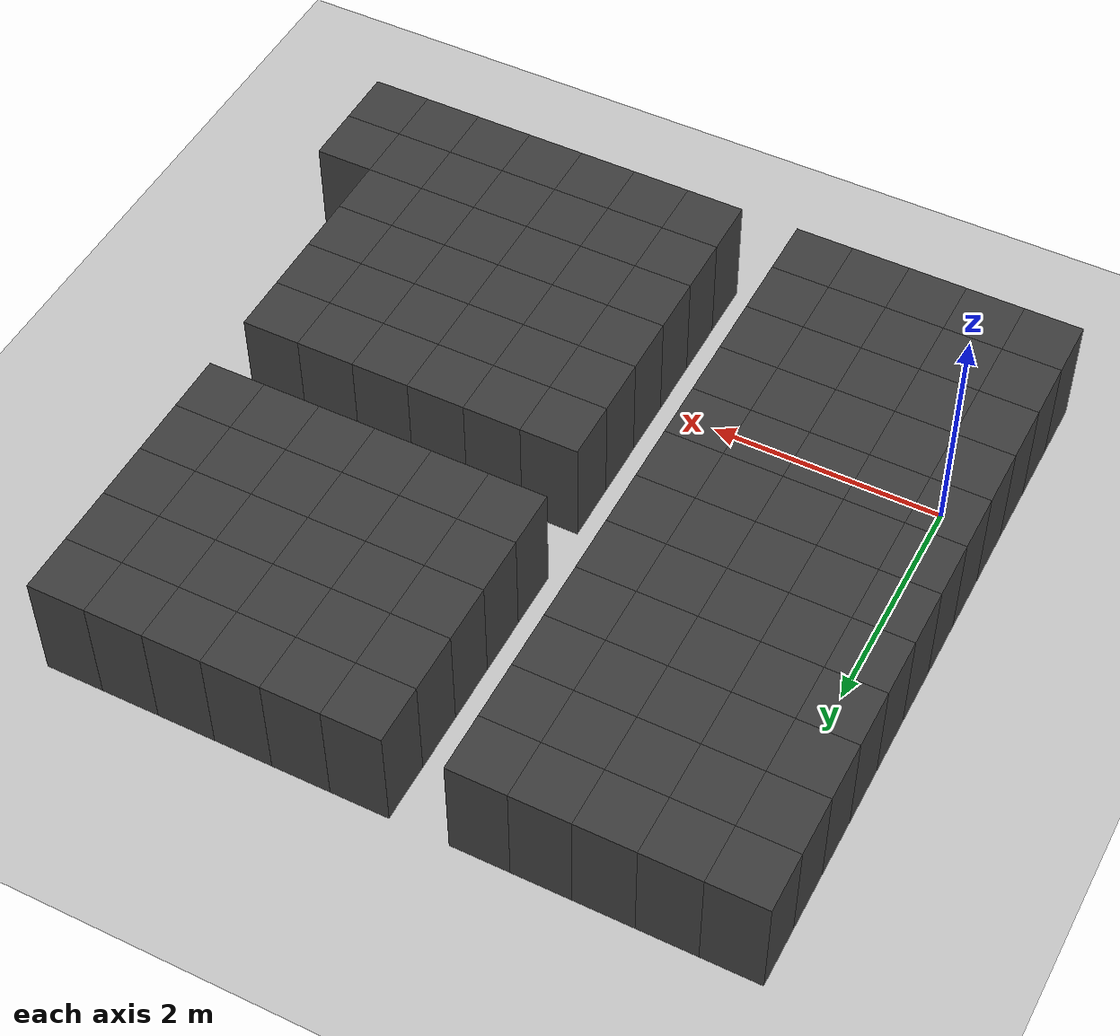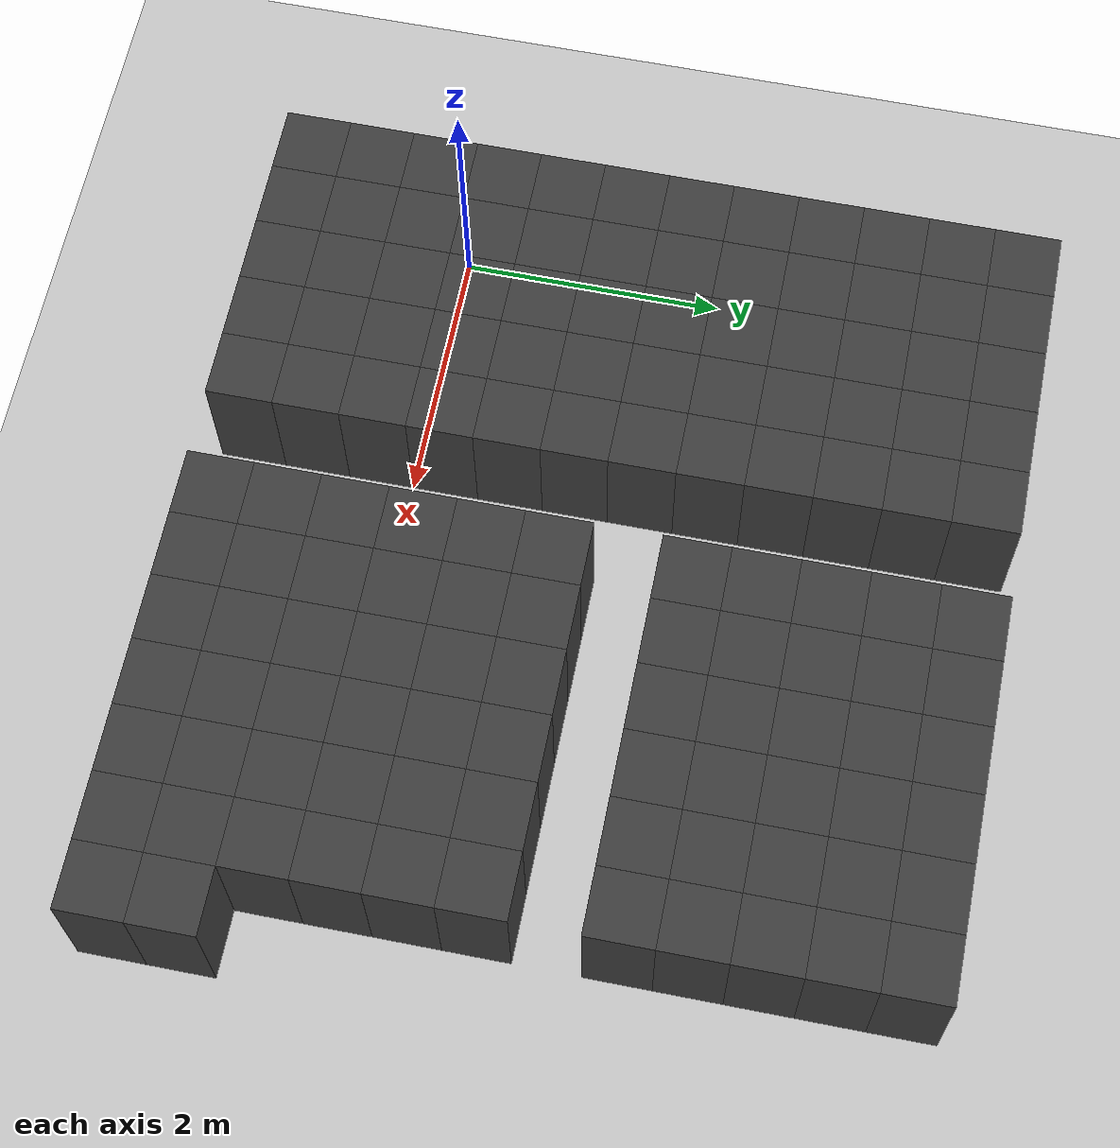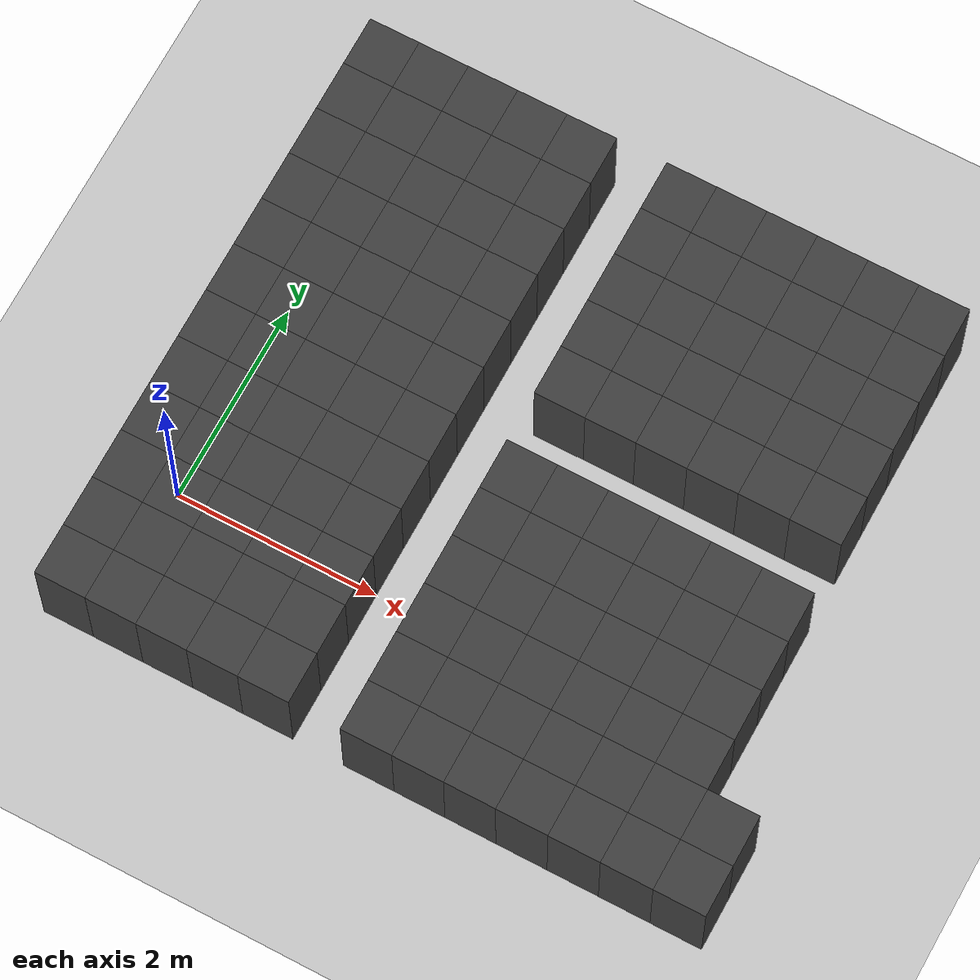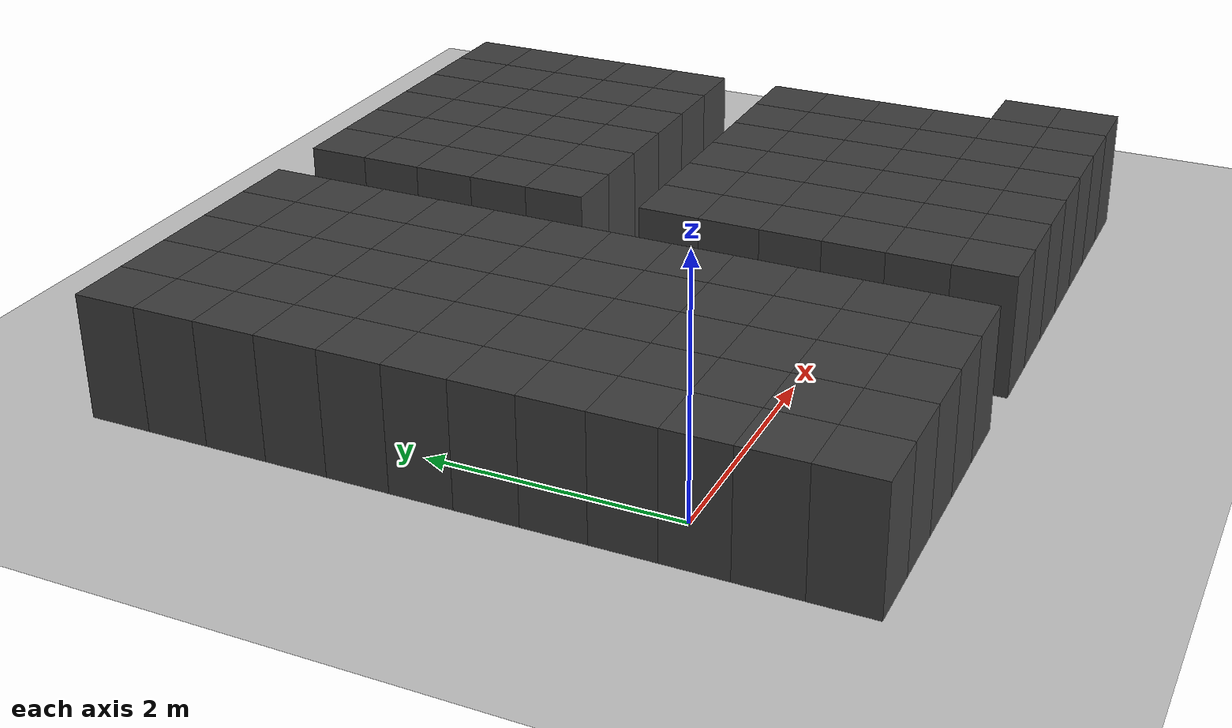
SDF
<sdf version="1.7">
 <world name="map_11672">
  <model name="ground_plane">
   <static>true</static>
   <link name="link">
    <collision name="collision">
     <geometry><plane><normal>0 0 1</normal><size>200 200</size></plane></geometry>
    </collision>
    <visual name="visual">
     <geometry><plane><normal>0 0 1</normal><size>200 200</size></plane></geometry>
     <material><ambient>0.8 0.8 0.8 1</ambient><diffuse>0.8 0.8 0.8 1</diffuse></material>
    </visual>
   </link>
  </model>
  <model name="maze_environment">
   <static>true</static>
   <link name="wall_639">
    <pose>-0.250 4.250 0.500 0 0 0</pose>
    <collision name="col"><geometry><box><size>0.5 0.5 1.0</size></box></geometry></collision>
    <visual name="vis">
     <geometry><box><size>0.5 0.5 1.0</size></box></geometry>
     <material><ambient>0.15 0.15 0.15 1</ambient><diffuse>0.25 0.25 0.25 1</diffuse></material>
    </visual>
   </link>
   <link name="wall_640">
    <pose>0.250 4.250 0.500 0 0 0</pose>
    <collision name="col"><geometry><box><size>0.5 0.5 1.0</size></box></geometry></collision>
    <visual name="vis">
     <geometry><box><size>0.5 0.5 1.0</size></box></geometry>
     <material><ambient>0.15 0.15 0.15 1</ambient><diffuse>0.25 0.25 0.25 1</diffuse></material>
    </visual>
   </link>
   <link name="wall_641">
    <pose>0.750 4.250 0.500 0 0 0</pose>
    <collision name="col"><geometry><box><size>0.5 0.5 1.0</size></box></geometry></collision>
    <visual name="vis">
     <geometry><box><size>0.5 0.5 1.0</size></box></geometry>
     <material><ambient>0.15 0.15 0.15 1</ambient><diffuse>0.25 0.25 0.25 1</diffuse></material>
    </visual>
   </link>
   <link name="wall_642">
    <pose>1.250 4.250 0.500 0 0 0</pose>
    <collision name="col"><geometry><box><size>0.5 0.5 1.0</size></box></geometry></collision>
    <visual name="vis">
     <geometry><box><size>0.5 0.5 1.0</size></box></geometry>
     <material><ambient>0.15 0.15 0.15 1</ambient><diffuse>0.25 0.25 0.25 1</diffuse></material>
    </visual>
   </link>
   <link name="wall_643">
    <pose>1.750 4.250 0.500 0 0 0</pose>
    <collision name="col"><geometry><box><size>0.5 0.5 1.0</size></box></geometry></collision>
    <visual name="vis">
     <geometry><box><size>0.5 0.5 1.0</size></box></geometry>
     <material><ambient>0.15 0.15 0.15 1</ambient><diffuse>0.25 0.25 0.25 1</diffuse></material>
    </visual>
   </link>
   <link name="wall_644">
    <pose>2.750 4.250 0.500 0 0 0</pose>
    <collision name="col"><geometry><box><size>0.5 0.5 1.0</size></box></geometry></collision>
    <visual name="vis">
     <geometry><box><size>0.5 0.5 1.0</size></box></geometry>
     <material><ambient>0.15 0.15 0.15 1</ambient><diffuse>0.25 0.25 0.25 1</diffuse></material>
    </visual>
   </link>
   <link name="wall_645">
    <pose>3.250 4.250 0.500 0 0 0</pose>
    <collision name="col"><geometry><box><size>0.5 0.5 1.0</size></box></geometry></collision>
    <visual name="vis">
     <geometry><box><size>0.5 0.5 1.0</size></box></geometry>
     <material><ambient>0.15 0.15 0.15 1</ambient><diffuse>0.25 0.25 0.25 1</diffuse></material>
    </visual>
   </link>
   <link name="wall_646">
    <pose>3.750 4.250 0.500 0 0 0</pose>
    <collision name="col"><geometry><box><size>0.5 0.5 1.0</size></box></geometry></collision>
    <visual name="vis">
     <geometry><box><size>0.5 0.5 1.0</size></box></geometry>
     <material><ambient>0.15 0.15 0.15 1</ambient><diffuse>0.25 0.25 0.25 1</diffuse></material>
    </visual>
   </link>
   <link name="wall_647">
    <pose>4.250 4.250 0.500 0 0 0</pose>
    <collision name="col"><geometry><box><size>0.5 0.5 1.0</size></box></geometry></collision>
    <visual name="vis">
     <geometry><box><size>0.5 0.5 1.0</size></box></geometry>
     <material><ambient>0.15 0.15 0.15 1</ambient><diffuse>0.25 0.25 0.25 1</diffuse></material>
    </visual>
   </link>
   <link name="wall_648">
    <pose>4.750 4.250 0.500 0 0 0</pose>
    <collision name="col"><geometry><box><size>0.5 0.5 1.0</size></box></geometry></collision>
    <visual name="vis">
     <geometry><box><size>0.5 0.5 1.0</size></box></geometry>
     <material><ambient>0.15 0.15 0.15 1</ambient><diffuse>0.25 0.25 0.25 1</diffuse></material>
    </visual>
   </link>
   <link name="wall_649">
    <pose>5.250 4.250 0.500 0 0 0</pose>
    <collision name="col"><geometry><box><size>0.5 0.5 1.0</size></box></geometry></collision>
    <visual name="vis">
     <geometry><box><size>0.5 0.5 1.0</size></box></geometry>
     <material><ambient>0.15 0.15 0.15 1</ambient><diffuse>0.25 0.25 0.25 1</diffuse></material>
    </visual>
   </link>
   <link name="wall_683">
    <pose>-0.250 3.750 0.500 0 0 0</pose>
    <collision name="col"><geometry><box><size>0.5 0.5 1.0</size></box></geometry></collision>
    <visual name="vis">
     <geometry><box><size>0.5 0.5 1.0</size></box></geometry>
     <material><ambient>0.15 0.15 0.15 1</ambient><diffuse>0.25 0.25 0.25 1</diffuse></material>
    </visual>
   </link>
   <link name="wall_684">
    <pose>0.250 3.750 0.500 0 0 0</pose>
    <collision name="col"><geometry><box><size>0.5 0.5 1.0</size></box></geometry></collision>
    <visual name="vis">
     <geometry><box><size>0.5 0.5 1.0</size></box></geometry>
     <material><ambient>0.15 0.15 0.15 1</ambient><diffuse>0.25 0.25 0.25 1</diffuse></material>
    </visual>
   </link>
   <link name="wall_685">
    <pose>0.750 3.750 0.500 0 0 0</pose>
    <collision name="col"><geometry><box><size>0.5 0.5 1.0</size></box></geometry></collision>
    <visual name="vis">
     <geometry><box><size>0.5 0.5 1.0</size></box></geometry>
     <material><ambient>0.15 0.15 0.15 1</ambient><diffuse>0.25 0.25 0.25 1</diffuse></material>
    </visual>
   </link>
   <link name="wall_686">
    <pose>1.250 3.750 0.500 0 0 0</pose>
    <collision name="col"><geometry><box><size>0.5 0.5 1.0</size></box></geometry></collision>
    <visual name="vis">
     <geometry><box><size>0.5 0.5 1.0</size></box></geometry>
     <material><ambient>0.15 0.15 0.15 1</ambient><diffuse>0.25 0.25 0.25 1</diffuse></material>
    </visual>
   </link>
   <link name="wall_687">
    <pose>1.750 3.750 0.500 0 0 0</pose>
    <collision name="col"><geometry><box><size>0.5 0.5 1.0</size></box></geometry></collision>
    <visual name="vis">
     <geometry><box><size>0.5 0.5 1.0</size></box></geometry>
     <material><ambient>0.15 0.15 0.15 1</ambient><diffuse>0.25 0.25 0.25 1</diffuse></material>
    </visual>
   </link>
   <link name="wall_688">
    <pose>2.750 3.750 0.500 0 0 0</pose>
    <collision name="col"><geometry><box><size>0.5 0.5 1.0</size></box></geometry></collision>
    <visual name="vis">
     <geometry><box><size>0.5 0.5 1.0</size></box></geometry>
     <material><ambient>0.15 0.15 0.15 1</ambient><diffuse>0.25 0.25 0.25 1</diffuse></material>
    </visual>
   </link>
   <link name="wall_689">
    <pose>3.250 3.750 0.500 0 0 0</pose>
    <collision name="col"><geometry><box><size>0.5 0.5 1.0</size></box></geometry></collision>
    <visual name="vis">
     <geometry><box><size>0.5 0.5 1.0</size></box></geometry>
     <material><ambient>0.15 0.15 0.15 1</ambient><diffuse>0.25 0.25 0.25 1</diffuse></material>
    </visual>
   </link>
   <link name="wall_690">
    <pose>3.750 3.750 0.500 0 0 0</pose>
    <collision name="col"><geometry><box><size>0.5 0.5 1.0</size></box></geometry></collision>
    <visual name="vis">
     <geometry><box><size>0.5 0.5 1.0</size></box></geometry>
     <material><ambient>0.15 0.15 0.15 1</ambient><diffuse>0.25 0.25 0.25 1</diffuse></material>
    </visual>
   </link>
   <link name="wall_691">
    <pose>4.250 3.750 0.500 0 0 0</pose>
    <collision name="col"><geometry><box><size>0.5 0.5 1.0</size></box></geometry></collision>
    <visual name="vis">
     <geometry><box><size>0.5 0.5 1.0</size></box></geometry>
     <material><ambient>0.15 0.15 0.15 1</ambient><diffuse>0.25 0.25 0.25 1</diffuse></material>
    </visual>
   </link>
   <link name="wall_692">
    <pose>4.750 3.750 0.500 0 0 0</pose>
    <collision name="col"><geometry><box><size>0.5 0.5 1.0</size></box></geometry></collision>
    <visual name="vis">
     <geometry><box><size>0.5 0.5 1.0</size></box></geometry>
     <material><ambient>0.15 0.15 0.15 1</ambient><diffuse>0.25 0.25 0.25 1</diffuse></material>
    </visual>
   </link>
   <link name="wall_693">
    <pose>5.250 3.750 0.500 0 0 0</pose>
    <collision name="col"><geometry><box><size>0.5 0.5 1.0</size></box></geometry></collision>
    <visual name="vis">
     <geometry><box><size>0.5 0.5 1.0</size></box></geometry>
     <material><ambient>0.15 0.15 0.15 1</ambient><diffuse>0.25 0.25 0.25 1</diffuse></material>
    </visual>
   </link>
   <link name="wall_727">
    <pose>-0.250 3.250 0.500 0 0 0</pose>
    <collision name="col"><geometry><box><size>0.5 0.5 1.0</size></box></geometry></collision>
    <visual name="vis">
     <geometry><box><size>0.5 0.5 1.0</size></box></geometry>
     <material><ambient>0.15 0.15 0.15 1</ambient><diffuse>0.25 0.25 0.25 1</diffuse></material>
    </visual>
   </link>
   <link name="wall_728">
    <pose>0.250 3.250 0.500 0 0 0</pose>
    <collision name="col"><geometry><box><size>0.5 0.5 1.0</size></box></geometry></collision>
    <visual name="vis">
     <geometry><box><size>0.5 0.5 1.0</size></box></geometry>
     <material><ambient>0.15 0.15 0.15 1</ambient><diffuse>0.25 0.25 0.25 1</diffuse></material>
    </visual>
   </link>
   <link name="wall_729">
    <pose>0.750 3.250 0.500 0 0 0</pose>
    <collision name="col"><geometry><box><size>0.5 0.5 1.0</size></box></geometry></collision>
    <visual name="vis">
     <geometry><box><size>0.5 0.5 1.0</size></box></geometry>
     <material><ambient>0.15 0.15 0.15 1</ambient><diffuse>0.25 0.25 0.25 1</diffuse></material>
    </visual>
   </link>
   <link name="wall_730">
    <pose>1.250 3.250 0.500 0 0 0</pose>
    <collision name="col"><geometry><box><size>0.5 0.5 1.0</size></box></geometry></collision>
    <visual name="vis">
     <geometry><box><size>0.5 0.5 1.0</size></box></geometry>
     <material><ambient>0.15 0.15 0.15 1</ambient><diffuse>0.25 0.25 0.25 1</diffuse></material>
    </visual>
   </link>
   <link name="wall_731">
    <pose>1.750 3.250 0.500 0 0 0</pose>
    <collision name="col"><geometry><box><size>0.5 0.5 1.0</size></box></geometry></collision>
    <visual name="vis">
     <geometry><box><size>0.5 0.5 1.0</size></box></geometry>
     <material><ambient>0.15 0.15 0.15 1</ambient><diffuse>0.25 0.25 0.25 1</diffuse></material>
    </visual>
   </link>
   <link name="wall_732">
    <pose>2.750 3.250 0.500 0 0 0</pose>
    <collision name="col"><geometry><box><size>0.5 0.5 1.0</size></box></geometry></collision>
    <visual name="vis">
     <geometry><box><size>0.5 0.5 1.0</size></box></geometry>
     <material><ambient>0.15 0.15 0.15 1</ambient><diffuse>0.25 0.25 0.25 1</diffuse></material>
    </visual>
   </link>
   <link name="wall_733">
    <pose>3.250 3.250 0.500 0 0 0</pose>
    <collision name="col"><geometry><box><size>0.5 0.5 1.0</size></box></geometry></collision>
    <visual name="vis">
     <geometry><box><size>0.5 0.5 1.0</size></box></geometry>
     <material><ambient>0.15 0.15 0.15 1</ambient><diffuse>0.25 0.25 0.25 1</diffuse></material>
    </visual>
   </link>
   <link name="wall_734">
    <pose>3.750 3.250 0.500 0 0 0</pose>
    <collision name="col"><geometry><box><size>0.5 0.5 1.0</size></box></geometry></collision>
    <visual name="vis">
     <geometry><box><size>0.5 0.5 1.0</size></box></geometry>
     <material><ambient>0.15 0.15 0.15 1</ambient><diffuse>0.25 0.25 0.25 1</diffuse></material>
    </visual>
   </link>
   <link name="wall_735">
    <pose>4.250 3.250 0.500 0 0 0</pose>
    <collision name="col"><geometry><box><size>0.5 0.5 1.0</size></box></geometry></collision>
    <visual name="vis">
     <geometry><box><size>0.5 0.5 1.0</size></box></geometry>
     <material><ambient>0.15 0.15 0.15 1</ambient><diffuse>0.25 0.25 0.25 1</diffuse></material>
    </visual>
   </link>
   <link name="wall_736">
    <pose>4.750 3.250 0.500 0 0 0</pose>
    <collision name="col"><geometry><box><size>0.5 0.5 1.0</size></box></geometry></collision>
    <visual name="vis">
     <geometry><box><size>0.5 0.5 1.0</size></box></geometry>
     <material><ambient>0.15 0.15 0.15 1</ambient><diffuse>0.25 0.25 0.25 1</diffuse></material>
    </visual>
   </link>
   <link name="wall_737">
    <pose>5.250 3.250 0.500 0 0 0</pose>
    <collision name="col"><geometry><box><size>0.5 0.5 1.0</size></box></geometry></collision>
    <visual name="vis">
     <geometry><box><size>0.5 0.5 1.0</size></box></geometry>
     <material><ambient>0.15 0.15 0.15 1</ambient><diffuse>0.25 0.25 0.25 1</diffuse></material>
    </visual>
   </link>
   <link name="wall_767">
    <pose>-0.250 2.750 0.500 0 0 0</pose>
    <collision name="col"><geometry><box><size>0.5 0.5 1.0</size></box></geometry></collision>
    <visual name="vis">
     <geometry><box><size>0.5 0.5 1.0</size></box></geometry>
     <material><ambient>0.15 0.15 0.15 1</ambient><diffuse>0.25 0.25 0.25 1</diffuse></material>
    </visual>
   </link>
   <link name="wall_768">
    <pose>0.250 2.750 0.500 0 0 0</pose>
    <collision name="col"><geometry><box><size>0.5 0.5 1.0</size></box></geometry></collision>
    <visual name="vis">
     <geometry><box><size>0.5 0.5 1.0</size></box></geometry>
     <material><ambient>0.15 0.15 0.15 1</ambient><diffuse>0.25 0.25 0.25 1</diffuse></material>
    </visual>
   </link>
   <link name="wall_769">
    <pose>0.750 2.750 0.500 0 0 0</pose>
    <collision name="col"><geometry><box><size>0.5 0.5 1.0</size></box></geometry></collision>
    <visual name="vis">
     <geometry><box><size>0.5 0.5 1.0</size></box></geometry>
     <material><ambient>0.15 0.15 0.15 1</ambient><diffuse>0.25 0.25 0.25 1</diffuse></material>
    </visual>
   </link>
   <link name="wall_770">
    <pose>1.250 2.750 0.500 0 0 0</pose>
    <collision name="col"><geometry><box><size>0.5 0.5 1.0</size></box></geometry></collision>
    <visual name="vis">
     <geometry><box><size>0.5 0.5 1.0</size></box></geometry>
     <material><ambient>0.15 0.15 0.15 1</ambient><diffuse>0.25 0.25 0.25 1</diffuse></material>
    </visual>
   </link>
   <link name="wall_771">
    <pose>1.750 2.750 0.500 0 0 0</pose>
    <collision name="col"><geometry><box><size>0.5 0.5 1.0</size></box></geometry></collision>
    <visual name="vis">
     <geometry><box><size>0.5 0.5 1.0</size></box></geometry>
     <material><ambient>0.15 0.15 0.15 1</ambient><diffuse>0.25 0.25 0.25 1</diffuse></material>
    </visual>
   </link>
   <link name="wall_772">
    <pose>2.750 2.750 0.500 0 0 0</pose>
    <collision name="col"><geometry><box><size>0.5 0.5 1.0</size></box></geometry></collision>
    <visual name="vis">
     <geometry><box><size>0.5 0.5 1.0</size></box></geometry>
     <material><ambient>0.15 0.15 0.15 1</ambient><diffuse>0.25 0.25 0.25 1</diffuse></material>
    </visual>
   </link>
   <link name="wall_773">
    <pose>3.250 2.750 0.500 0 0 0</pose>
    <collision name="col"><geometry><box><size>0.5 0.5 1.0</size></box></geometry></collision>
    <visual name="vis">
     <geometry><box><size>0.5 0.5 1.0</size></box></geometry>
     <material><ambient>0.15 0.15 0.15 1</ambient><diffuse>0.25 0.25 0.25 1</diffuse></material>
    </visual>
   </link>
   <link name="wall_774">
    <pose>3.750 2.750 0.500 0 0 0</pose>
    <collision name="col"><geometry><box><size>0.5 0.5 1.0</size></box></geometry></collision>
    <visual name="vis">
     <geometry><box><size>0.5 0.5 1.0</size></box></geometry>
     <material><ambient>0.15 0.15 0.15 1</ambient><diffuse>0.25 0.25 0.25 1</diffuse></material>
    </visual>
   </link>
   <link name="wall_775">
    <pose>4.250 2.750 0.500 0 0 0</pose>
    <collision name="col"><geometry><box><size>0.5 0.5 1.0</size></box></geometry></collision>
    <visual name="vis">
     <geometry><box><size>0.5 0.5 1.0</size></box></geometry>
     <material><ambient>0.15 0.15 0.15 1</ambient><diffuse>0.25 0.25 0.25 1</diffuse></material>
    </visual>
   </link>
   <link name="wall_776">
    <pose>4.750 2.750 0.500 0 0 0</pose>
    <collision name="col"><geometry><box><size>0.5 0.5 1.0</size></box></geometry></collision>
    <visual name="vis">
     <geometry><box><size>0.5 0.5 1.0</size></box></geometry>
     <material><ambient>0.15 0.15 0.15 1</ambient><diffuse>0.25 0.25 0.25 1</diffuse></material>
    </visual>
   </link>
   <link name="wall_777">
    <pose>5.250 2.750 0.500 0 0 0</pose>
    <collision name="col"><geometry><box><size>0.5 0.5 1.0</size></box></geometry></collision>
    <visual name="vis">
     <geometry><box><size>0.5 0.5 1.0</size></box></geometry>
     <material><ambient>0.15 0.15 0.15 1</ambient><diffuse>0.25 0.25 0.25 1</diffuse></material>
    </visual>
   </link>
   <link name="wall_812">
    <pose>-0.250 2.250 0.500 0 0 0</pose>
    <collision name="col"><geometry><box><size>0.5 0.5 1.0</size></box></geometry></collision>
    <visual name="vis">
     <geometry><box><size>0.5 0.5 1.0</size></box></geometry>
     <material><ambient>0.15 0.15 0.15 1</ambient><diffuse>0.25 0.25 0.25 1</diffuse></material>
    </visual>
   </link>
   <link name="wall_813">
    <pose>0.250 2.250 0.500 0 0 0</pose>
    <collision name="col"><geometry><box><size>0.5 0.5 1.0</size></box></geometry></collision>
    <visual name="vis">
     <geometry><box><size>0.5 0.5 1.0</size></box></geometry>
     <material><ambient>0.15 0.15 0.15 1</ambient><diffuse>0.25 0.25 0.25 1</diffuse></material>
    </visual>
   </link>
   <link name="wall_814">
    <pose>0.750 2.250 0.500 0 0 0</pose>
    <collision name="col"><geometry><box><size>0.5 0.5 1.0</size></box></geometry></collision>
    <visual name="vis">
     <geometry><box><size>0.5 0.5 1.0</size></box></geometry>
     <material><ambient>0.15 0.15 0.15 1</ambient><diffuse>0.25 0.25 0.25 1</diffuse></material>
    </visual>
   </link>
   <link name="wall_815">
    <pose>1.250 2.250 0.500 0 0 0</pose>
    <collision name="col"><geometry><box><size>0.5 0.5 1.0</size></box></geometry></collision>
    <visual name="vis">
     <geometry><box><size>0.5 0.5 1.0</size></box></geometry>
     <material><ambient>0.15 0.15 0.15 1</ambient><diffuse>0.25 0.25 0.25 1</diffuse></material>
    </visual>
   </link>
   <link name="wall_816">
    <pose>1.750 2.250 0.500 0 0 0</pose>
    <collision name="col"><geometry><box><size>0.5 0.5 1.0</size></box></geometry></collision>
    <visual name="vis">
     <geometry><box><size>0.5 0.5 1.0</size></box></geometry>
     <material><ambient>0.15 0.15 0.15 1</ambient><diffuse>0.25 0.25 0.25 1</diffuse></material>
    </visual>
   </link>
   <link name="wall_817">
    <pose>2.750 2.250 0.500 0 0 0</pose>
    <collision name="col"><geometry><box><size>0.5 0.5 1.0</size></box></geometry></collision>
    <visual name="vis">
     <geometry><box><size>0.5 0.5 1.0</size></box></geometry>
     <material><ambient>0.15 0.15 0.15 1</ambient><diffuse>0.25 0.25 0.25 1</diffuse></material>
    </visual>
   </link>
   <link name="wall_818">
    <pose>3.250 2.250 0.500 0 0 0</pose>
    <collision name="col"><geometry><box><size>0.5 0.5 1.0</size></box></geometry></collision>
    <visual name="vis">
     <geometry><box><size>0.5 0.5 1.0</size></box></geometry>
     <material><ambient>0.15 0.15 0.15 1</ambient><diffuse>0.25 0.25 0.25 1</diffuse></material>
    </visual>
   </link>
   <link name="wall_819">
    <pose>3.750 2.250 0.500 0 0 0</pose>
    <collision name="col"><geometry><box><size>0.5 0.5 1.0</size></box></geometry></collision>
    <visual name="vis">
     <geometry><box><size>0.5 0.5 1.0</size></box></geometry>
     <material><ambient>0.15 0.15 0.15 1</ambient><diffuse>0.25 0.25 0.25 1</diffuse></material>
    </visual>
   </link>
   <link name="wall_820">
    <pose>4.250 2.250 0.500 0 0 0</pose>
    <collision name="col"><geometry><box><size>0.5 0.5 1.0</size></box></geometry></collision>
    <visual name="vis">
     <geometry><box><size>0.5 0.5 1.0</size></box></geometry>
     <material><ambient>0.15 0.15 0.15 1</ambient><diffuse>0.25 0.25 0.25 1</diffuse></material>
    </visual>
   </link>
   <link name="wall_821">
    <pose>4.750 2.250 0.500 0 0 0</pose>
    <collision name="col"><geometry><box><size>0.5 0.5 1.0</size></box></geometry></collision>
    <visual name="vis">
     <geometry><box><size>0.5 0.5 1.0</size></box></geometry>
     <material><ambient>0.15 0.15 0.15 1</ambient><diffuse>0.25 0.25 0.25 1</diffuse></material>
    </visual>
   </link>
   <link name="wall_822">
    <pose>5.250 2.250 0.500 0 0 0</pose>
    <collision name="col"><geometry><box><size>0.5 0.5 1.0</size></box></geometry></collision>
    <visual name="vis">
     <geometry><box><size>0.5 0.5 1.0</size></box></geometry>
     <material><ambient>0.15 0.15 0.15 1</ambient><diffuse>0.25 0.25 0.25 1</diffuse></material>
    </visual>
   </link>
   <link name="wall_857">
    <pose>-0.250 1.750 0.500 0 0 0</pose>
    <collision name="col"><geometry><box><size>0.5 0.5 1.0</size></box></geometry></collision>
    <visual name="vis">
     <geometry><box><size>0.5 0.5 1.0</size></box></geometry>
     <material><ambient>0.15 0.15 0.15 1</ambient><diffuse>0.25 0.25 0.25 1</diffuse></material>
    </visual>
   </link>
   <link name="wall_858">
    <pose>0.250 1.750 0.500 0 0 0</pose>
    <collision name="col"><geometry><box><size>0.5 0.5 1.0</size></box></geometry></collision>
    <visual name="vis">
     <geometry><box><size>0.5 0.5 1.0</size></box></geometry>
     <material><ambient>0.15 0.15 0.15 1</ambient><diffuse>0.25 0.25 0.25 1</diffuse></material>
    </visual>
   </link>
   <link name="wall_859">
    <pose>0.750 1.750 0.500 0 0 0</pose>
    <collision name="col"><geometry><box><size>0.5 0.5 1.0</size></box></geometry></collision>
    <visual name="vis">
     <geometry><box><size>0.5 0.5 1.0</size></box></geometry>
     <material><ambient>0.15 0.15 0.15 1</ambient><diffuse>0.25 0.25 0.25 1</diffuse></material>
    </visual>
   </link>
   <link name="wall_860">
    <pose>1.250 1.750 0.500 0 0 0</pose>
    <collision name="col"><geometry><box><size>0.5 0.5 1.0</size></box></geometry></collision>
    <visual name="vis">
     <geometry><box><size>0.5 0.5 1.0</size></box></geometry>
     <material><ambient>0.15 0.15 0.15 1</ambient><diffuse>0.25 0.25 0.25 1</diffuse></material>
    </visual>
   </link>
   <link name="wall_861">
    <pose>1.750 1.750 0.500 0 0 0</pose>
    <collision name="col"><geometry><box><size>0.5 0.5 1.0</size></box></geometry></collision>
    <visual name="vis">
     <geometry><box><size>0.5 0.5 1.0</size></box></geometry>
     <material><ambient>0.15 0.15 0.15 1</ambient><diffuse>0.25 0.25 0.25 1</diffuse></material>
    </visual>
   </link>
   <link name="wall_892">
    <pose>-0.250 1.250 0.500 0 0 0</pose>
    <collision name="col"><geometry><box><size>0.5 0.5 1.0</size></box></geometry></collision>
    <visual name="vis">
     <geometry><box><size>0.5 0.5 1.0</size></box></geometry>
     <material><ambient>0.15 0.15 0.15 1</ambient><diffuse>0.25 0.25 0.25 1</diffuse></material>
    </visual>
   </link>
   <link name="wall_893">
    <pose>0.250 1.250 0.500 0 0 0</pose>
    <collision name="col"><geometry><box><size>0.5 0.5 1.0</size></box></geometry></collision>
    <visual name="vis">
     <geometry><box><size>0.5 0.5 1.0</size></box></geometry>
     <material><ambient>0.15 0.15 0.15 1</ambient><diffuse>0.25 0.25 0.25 1</diffuse></material>
    </visual>
   </link>
   <link name="wall_894">
    <pose>0.750 1.250 0.500 0 0 0</pose>
    <collision name="col"><geometry><box><size>0.5 0.5 1.0</size></box></geometry></collision>
    <visual name="vis">
     <geometry><box><size>0.5 0.5 1.0</size></box></geometry>
     <material><ambient>0.15 0.15 0.15 1</ambient><diffuse>0.25 0.25 0.25 1</diffuse></material>
    </visual>
   </link>
   <link name="wall_895">
    <pose>1.250 1.250 0.500 0 0 0</pose>
    <collision name="col"><geometry><box><size>0.5 0.5 1.0</size></box></geometry></collision>
    <visual name="vis">
     <geometry><box><size>0.5 0.5 1.0</size></box></geometry>
     <material><ambient>0.15 0.15 0.15 1</ambient><diffuse>0.25 0.25 0.25 1</diffuse></material>
    </visual>
   </link>
   <link name="wall_896">
    <pose>1.750 1.250 0.500 0 0 0</pose>
    <collision name="col"><geometry><box><size>0.5 0.5 1.0</size></box></geometry></collision>
    <visual name="vis">
     <geometry><box><size>0.5 0.5 1.0</size></box></geometry>
     <material><ambient>0.15 0.15 0.15 1</ambient><diffuse>0.25 0.25 0.25 1</diffuse></material>
    </visual>
   </link>
   <link name="wall_897">
    <pose>2.750 1.250 0.500 0 0 0</pose>
    <collision name="col"><geometry><box><size>0.5 0.5 1.0</size></box></geometry></collision>
    <visual name="vis">
     <geometry><box><size>0.5 0.5 1.0</size></box></geometry>
     <material><ambient>0.15 0.15 0.15 1</ambient><diffuse>0.25 0.25 0.25 1</diffuse></material>
    </visual>
   </link>
   <link name="wall_898">
    <pose>3.250 1.250 0.500 0 0 0</pose>
    <collision name="col"><geometry><box><size>0.5 0.5 1.0</size></box></geometry></collision>
    <visual name="vis">
     <geometry><box><size>0.5 0.5 1.0</size></box></geometry>
     <material><ambient>0.15 0.15 0.15 1</ambient><diffuse>0.25 0.25 0.25 1</diffuse></material>
    </visual>
   </link>
   <link name="wall_899">
    <pose>3.750 1.250 0.500 0 0 0</pose>
    <collision name="col"><geometry><box><size>0.5 0.5 1.0</size></box></geometry></collision>
    <visual name="vis">
     <geometry><box><size>0.5 0.5 1.0</size></box></geometry>
     <material><ambient>0.15 0.15 0.15 1</ambient><diffuse>0.25 0.25 0.25 1</diffuse></material>
    </visual>
   </link>
   <link name="wall_900">
    <pose>4.250 1.250 0.500 0 0 0</pose>
    <collision name="col"><geometry><box><size>0.5 0.5 1.0</size></box></geometry></collision>
    <visual name="vis">
     <geometry><box><size>0.5 0.5 1.0</size></box></geometry>
     <material><ambient>0.15 0.15 0.15 1</ambient><diffuse>0.25 0.25 0.25 1</diffuse></material>
    </visual>
   </link>
   <link name="wall_901">
    <pose>4.750 1.250 0.500 0 0 0</pose>
    <collision name="col"><geometry><box><size>0.5 0.5 1.0</size></box></geometry></collision>
    <visual name="vis">
     <geometry><box><size>0.5 0.5 1.0</size></box></geometry>
     <material><ambient>0.15 0.15 0.15 1</ambient><diffuse>0.25 0.25 0.25 1</diffuse></material>
    </visual>
   </link>
   <link name="wall_902">
    <pose>5.250 1.250 0.500 0 0 0</pose>
    <collision name="col"><geometry><box><size>0.5 0.5 1.0</size></box></geometry></collision>
    <visual name="vis">
     <geometry><box><size>0.5 0.5 1.0</size></box></geometry>
     <material><ambient>0.15 0.15 0.15 1</ambient><diffuse>0.25 0.25 0.25 1</diffuse></material>
    </visual>
   </link>
   <link name="wall_937">
    <pose>-0.250 0.750 0.500 0 0 0</pose>
    <collision name="col"><geometry><box><size>0.5 0.5 1.0</size></box></geometry></collision>
    <visual name="vis">
     <geometry><box><size>0.5 0.5 1.0</size></box></geometry>
     <material><ambient>0.15 0.15 0.15 1</ambient><diffuse>0.25 0.25 0.25 1</diffuse></material>
    </visual>
   </link>
   <link name="wall_938">
    <pose>0.250 0.750 0.500 0 0 0</pose>
    <collision name="col"><geometry><box><size>0.5 0.5 1.0</size></box></geometry></collision>
    <visual name="vis">
     <geometry><box><size>0.5 0.5 1.0</size></box></geometry>
     <material><ambient>0.15 0.15 0.15 1</ambient><diffuse>0.25 0.25 0.25 1</diffuse></material>
    </visual>
   </link>
   <link name="wall_939">
    <pose>0.750 0.750 0.500 0 0 0</pose>
    <collision name="col"><geometry><box><size>0.5 0.5 1.0</size></box></geometry></collision>
    <visual name="vis">
     <geometry><box><size>0.5 0.5 1.0</size></box></geometry>
     <material><ambient>0.15 0.15 0.15 1</ambient><diffuse>0.25 0.25 0.25 1</diffuse></material>
    </visual>
   </link>
   <link name="wall_940">
    <pose>1.250 0.750 0.500 0 0 0</pose>
    <collision name="col"><geometry><box><size>0.5 0.5 1.0</size></box></geometry></collision>
    <visual name="vis">
     <geometry><box><size>0.5 0.5 1.0</size></box></geometry>
     <material><ambient>0.15 0.15 0.15 1</ambient><diffuse>0.25 0.25 0.25 1</diffuse></material>
    </visual>
   </link>
   <link name="wall_941">
    <pose>1.750 0.750 0.500 0 0 0</pose>
    <collision name="col"><geometry><box><size>0.5 0.5 1.0</size></box></geometry></collision>
    <visual name="vis">
     <geometry><box><size>0.5 0.5 1.0</size></box></geometry>
     <material><ambient>0.15 0.15 0.15 1</ambient><diffuse>0.25 0.25 0.25 1</diffuse></material>
    </visual>
   </link>
   <link name="wall_942">
    <pose>2.750 0.750 0.500 0 0 0</pose>
    <collision name="col"><geometry><box><size>0.5 0.5 1.0</size></box></geometry></collision>
    <visual name="vis">
     <geometry><box><size>0.5 0.5 1.0</size></box></geometry>
     <material><ambient>0.15 0.15 0.15 1</ambient><diffuse>0.25 0.25 0.25 1</diffuse></material>
    </visual>
   </link>
   <link name="wall_943">
    <pose>3.250 0.750 0.500 0 0 0</pose>
    <collision name="col"><geometry><box><size>0.5 0.5 1.0</size></box></geometry></collision>
    <visual name="vis">
     <geometry><box><size>0.5 0.5 1.0</size></box></geometry>
     <material><ambient>0.15 0.15 0.15 1</ambient><diffuse>0.25 0.25 0.25 1</diffuse></material>
    </visual>
   </link>
   <link name="wall_944">
    <pose>3.750 0.750 0.500 0 0 0</pose>
    <collision name="col"><geometry><box><size>0.5 0.5 1.0</size></box></geometry></collision>
    <visual name="vis">
     <geometry><box><size>0.5 0.5 1.0</size></box></geometry>
     <material><ambient>0.15 0.15 0.15 1</ambient><diffuse>0.25 0.25 0.25 1</diffuse></material>
    </visual>
   </link>
   <link name="wall_945">
    <pose>4.250 0.750 0.500 0 0 0</pose>
    <collision name="col"><geometry><box><size>0.5 0.5 1.0</size></box></geometry></collision>
    <visual name="vis">
     <geometry><box><size>0.5 0.5 1.0</size></box></geometry>
     <material><ambient>0.15 0.15 0.15 1</ambient><diffuse>0.25 0.25 0.25 1</diffuse></material>
    </visual>
   </link>
   <link name="wall_946">
    <pose>4.750 0.750 0.500 0 0 0</pose>
    <collision name="col"><geometry><box><size>0.5 0.5 1.0</size></box></geometry></collision>
    <visual name="vis">
     <geometry><box><size>0.5 0.5 1.0</size></box></geometry>
     <material><ambient>0.15 0.15 0.15 1</ambient><diffuse>0.25 0.25 0.25 1</diffuse></material>
    </visual>
   </link>
   <link name="wall_947">
    <pose>5.250 0.750 0.500 0 0 0</pose>
    <collision name="col"><geometry><box><size>0.5 0.5 1.0</size></box></geometry></collision>
    <visual name="vis">
     <geometry><box><size>0.5 0.5 1.0</size></box></geometry>
     <material><ambient>0.15 0.15 0.15 1</ambient><diffuse>0.25 0.25 0.25 1</diffuse></material>
    </visual>
   </link>
   <link name="wall_982">
    <pose>-0.250 0.250 0.500 0 0 0</pose>
    <collision name="col"><geometry><box><size>0.5 0.5 1.0</size></box></geometry></collision>
    <visual name="vis">
     <geometry><box><size>0.5 0.5 1.0</size></box></geometry>
     <material><ambient>0.15 0.15 0.15 1</ambient><diffuse>0.25 0.25 0.25 1</diffuse></material>
    </visual>
   </link>
   <link name="wall_983">
    <pose>0.250 0.250 0.500 0 0 0</pose>
    <collision name="col"><geometry><box><size>0.5 0.5 1.0</size></box></geometry></collision>
    <visual name="vis">
     <geometry><box><size>0.5 0.5 1.0</size></box></geometry>
     <material><ambient>0.15 0.15 0.15 1</ambient><diffuse>0.25 0.25 0.25 1</diffuse></material>
    </visual>
   </link>
   <link name="wall_984">
    <pose>0.750 0.250 0.500 0 0 0</pose>
    <collision name="col"><geometry><box><size>0.5 0.5 1.0</size></box></geometry></collision>
    <visual name="vis">
     <geometry><box><size>0.5 0.5 1.0</size></box></geometry>
     <material><ambient>0.15 0.15 0.15 1</ambient><diffuse>0.25 0.25 0.25 1</diffuse></material>
    </visual>
   </link>
   <link name="wall_985">
    <pose>1.250 0.250 0.500 0 0 0</pose>
    <collision name="col"><geometry><box><size>0.5 0.5 1.0</size></box></geometry></collision>
    <visual name="vis">
     <geometry><box><size>0.5 0.5 1.0</size></box></geometry>
     <material><ambient>0.15 0.15 0.15 1</ambient><diffuse>0.25 0.25 0.25 1</diffuse></material>
    </visual>
   </link>
   <link name="wall_986">
    <pose>1.750 0.250 0.500 0 0 0</pose>
    <collision name="col"><geometry><box><size>0.5 0.5 1.0</size></box></geometry></collision>
    <visual name="vis">
     <geometry><box><size>0.5 0.5 1.0</size></box></geometry>
     <material><ambient>0.15 0.15 0.15 1</ambient><diffuse>0.25 0.25 0.25 1</diffuse></material>
    </visual>
   </link>
   <link name="wall_987">
    <pose>2.750 0.250 0.500 0 0 0</pose>
    <collision name="col"><geometry><box><size>0.5 0.5 1.0</size></box></geometry></collision>
    <visual name="vis">
     <geometry><box><size>0.5 0.5 1.0</size></box></geometry>
     <material><ambient>0.15 0.15 0.15 1</ambient><diffuse>0.25 0.25 0.25 1</diffuse></material>
    </visual>
   </link>
   <link name="wall_988">
    <pose>3.250 0.250 0.500 0 0 0</pose>
    <collision name="col"><geometry><box><size>0.5 0.5 1.0</size></box></geometry></collision>
    <visual name="vis">
     <geometry><box><size>0.5 0.5 1.0</size></box></geometry>
     <material><ambient>0.15 0.15 0.15 1</ambient><diffuse>0.25 0.25 0.25 1</diffuse></material>
    </visual>
   </link>
   <link name="wall_989">
    <pose>3.750 0.250 0.500 0 0 0</pose>
    <collision name="col"><geometry><box><size>0.5 0.5 1.0</size></box></geometry></collision>
    <visual name="vis">
     <geometry><box><size>0.5 0.5 1.0</size></box></geometry>
     <material><ambient>0.15 0.15 0.15 1</ambient><diffuse>0.25 0.25 0.25 1</diffuse></material>
    </visual>
   </link>
   <link name="wall_990">
    <pose>4.250 0.250 0.500 0 0 0</pose>
    <collision name="col"><geometry><box><size>0.5 0.5 1.0</size></box></geometry></collision>
    <visual name="vis">
     <geometry><box><size>0.5 0.5 1.0</size></box></geometry>
     <material><ambient>0.15 0.15 0.15 1</ambient><diffuse>0.25 0.25 0.25 1</diffuse></material>
    </visual>
   </link>
   <link name="wall_991">
    <pose>4.750 0.250 0.500 0 0 0</pose>
    <collision name="col"><geometry><box><size>0.5 0.5 1.0</size></box></geometry></collision>
    <visual name="vis">
     <geometry><box><size>0.5 0.5 1.0</size></box></geometry>
     <material><ambient>0.15 0.15 0.15 1</ambient><diffuse>0.25 0.25 0.25 1</diffuse></material>
    </visual>
   </link>
   <link name="wall_992">
    <pose>5.250 0.250 0.500 0 0 0</pose>
    <collision name="col"><geometry><box><size>0.5 0.5 1.0</size></box></geometry></collision>
    <visual name="vis">
     <geometry><box><size>0.5 0.5 1.0</size></box></geometry>
     <material><ambient>0.15 0.15 0.15 1</ambient><diffuse>0.25 0.25 0.25 1</diffuse></material>
    </visual>
   </link>
   <link name="wall_1027">
    <pose>-0.250 -0.250 0.500 0 0 0</pose>
    <collision name="col"><geometry><box><size>0.5 0.5 1.0</size></box></geometry></collision>
    <visual name="vis">
     <geometry><box><size>0.5 0.5 1.0</size></box></geometry>
     <material><ambient>0.15 0.15 0.15 1</ambient><diffuse>0.25 0.25 0.25 1</diffuse></material>
    </visual>
   </link>
   <link name="wall_1028">
    <pose>0.250 -0.250 0.500 0 0 0</pose>
    <collision name="col"><geometry><box><size>0.5 0.5 1.0</size></box></geometry></collision>
    <visual name="vis">
     <geometry><box><size>0.5 0.5 1.0</size></box></geometry>
     <material><ambient>0.15 0.15 0.15 1</ambient><diffuse>0.25 0.25 0.25 1</diffuse></material>
    </visual>
   </link>
   <link name="wall_1029">
    <pose>0.750 -0.250 0.500 0 0 0</pose>
    <collision name="col"><geometry><box><size>0.5 0.5 1.0</size></box></geometry></collision>
    <visual name="vis">
     <geometry><box><size>0.5 0.5 1.0</size></box></geometry>
     <material><ambient>0.15 0.15 0.15 1</ambient><diffuse>0.25 0.25 0.25 1</diffuse></material>
    </visual>
   </link>
   <link name="wall_1030">
    <pose>1.250 -0.250 0.500 0 0 0</pose>
    <collision name="col"><geometry><box><size>0.5 0.5 1.0</size></box></geometry></collision>
    <visual name="vis">
     <geometry><box><size>0.5 0.5 1.0</size></box></geometry>
     <material><ambient>0.15 0.15 0.15 1</ambient><diffuse>0.25 0.25 0.25 1</diffuse></material>
    </visual>
   </link>
   <link name="wall_1031">
    <pose>1.750 -0.250 0.500 0 0 0</pose>
    <collision name="col"><geometry><box><size>0.5 0.5 1.0</size></box></geometry></collision>
    <visual name="vis">
     <geometry><box><size>0.5 0.5 1.0</size></box></geometry>
     <material><ambient>0.15 0.15 0.15 1</ambient><diffuse>0.25 0.25 0.25 1</diffuse></material>
    </visual>
   </link>
   <link name="wall_1032">
    <pose>2.750 -0.250 0.500 0 0 0</pose>
    <collision name="col"><geometry><box><size>0.5 0.5 1.0</size></box></geometry></collision>
    <visual name="vis">
     <geometry><box><size>0.5 0.5 1.0</size></box></geometry>
     <material><ambient>0.15 0.15 0.15 1</ambient><diffuse>0.25 0.25 0.25 1</diffuse></material>
    </visual>
   </link>
   <link name="wall_1033">
    <pose>3.250 -0.250 0.500 0 0 0</pose>
    <collision name="col"><geometry><box><size>0.5 0.5 1.0</size></box></geometry></collision>
    <visual name="vis">
     <geometry><box><size>0.5 0.5 1.0</size></box></geometry>
     <material><ambient>0.15 0.15 0.15 1</ambient><diffuse>0.25 0.25 0.25 1</diffuse></material>
    </visual>
   </link>
   <link name="wall_1034">
    <pose>3.750 -0.250 0.500 0 0 0</pose>
    <collision name="col"><geometry><box><size>0.5 0.5 1.0</size></box></geometry></collision>
    <visual name="vis">
     <geometry><box><size>0.5 0.5 1.0</size></box></geometry>
     <material><ambient>0.15 0.15 0.15 1</ambient><diffuse>0.25 0.25 0.25 1</diffuse></material>
    </visual>
   </link>
   <link name="wall_1035">
    <pose>4.250 -0.250 0.500 0 0 0</pose>
    <collision name="col"><geometry><box><size>0.5 0.5 1.0</size></box></geometry></collision>
    <visual name="vis">
     <geometry><box><size>0.5 0.5 1.0</size></box></geometry>
     <material><ambient>0.15 0.15 0.15 1</ambient><diffuse>0.25 0.25 0.25 1</diffuse></material>
    </visual>
   </link>
   <link name="wall_1036">
    <pose>4.750 -0.250 0.500 0 0 0</pose>
    <collision name="col"><geometry><box><size>0.5 0.5 1.0</size></box></geometry></collision>
    <visual name="vis">
     <geometry><box><size>0.5 0.5 1.0</size></box></geometry>
     <material><ambient>0.15 0.15 0.15 1</ambient><diffuse>0.25 0.25 0.25 1</diffuse></material>
    </visual>
   </link>
   <link name="wall_1037">
    <pose>5.250 -0.250 0.500 0 0 0</pose>
    <collision name="col"><geometry><box><size>0.5 0.5 1.0</size></box></geometry></collision>
    <visual name="vis">
     <geometry><box><size>0.5 0.5 1.0</size></box></geometry>
     <material><ambient>0.15 0.15 0.15 1</ambient><diffuse>0.25 0.25 0.25 1</diffuse></material>
    </visual>
   </link>
   <link name="wall_1075">
    <pose>-0.250 -0.750 0.500 0 0 0</pose>
    <collision name="col"><geometry><box><size>0.5 0.5 1.0</size></box></geometry></collision>
    <visual name="vis">
     <geometry><box><size>0.5 0.5 1.0</size></box></geometry>
     <material><ambient>0.15 0.15 0.15 1</ambient><diffuse>0.25 0.25 0.25 1</diffuse></material>
    </visual>
   </link>
   <link name="wall_1076">
    <pose>0.250 -0.750 0.500 0 0 0</pose>
    <collision name="col"><geometry><box><size>0.5 0.5 1.0</size></box></geometry></collision>
    <visual name="vis">
     <geometry><box><size>0.5 0.5 1.0</size></box></geometry>
     <material><ambient>0.15 0.15 0.15 1</ambient><diffuse>0.25 0.25 0.25 1</diffuse></material>
    </visual>
   </link>
   <link name="wall_1077">
    <pose>0.750 -0.750 0.500 0 0 0</pose>
    <collision name="col"><geometry><box><size>0.5 0.5 1.0</size></box></geometry></collision>
    <visual name="vis">
     <geometry><box><size>0.5 0.5 1.0</size></box></geometry>
     <material><ambient>0.15 0.15 0.15 1</ambient><diffuse>0.25 0.25 0.25 1</diffuse></material>
    </visual>
   </link>
   <link name="wall_1078">
    <pose>1.250 -0.750 0.500 0 0 0</pose>
    <collision name="col"><geometry><box><size>0.5 0.5 1.0</size></box></geometry></collision>
    <visual name="vis">
     <geometry><box><size>0.5 0.5 1.0</size></box></geometry>
     <material><ambient>0.15 0.15 0.15 1</ambient><diffuse>0.25 0.25 0.25 1</diffuse></material>
    </visual>
   </link>
   <link name="wall_1079">
    <pose>1.750 -0.750 0.500 0 0 0</pose>
    <collision name="col"><geometry><box><size>0.5 0.5 1.0</size></box></geometry></collision>
    <visual name="vis">
     <geometry><box><size>0.5 0.5 1.0</size></box></geometry>
     <material><ambient>0.15 0.15 0.15 1</ambient><diffuse>0.25 0.25 0.25 1</diffuse></material>
    </visual>
   </link>
   <link name="wall_1080">
    <pose>2.750 -0.750 0.500 0 0 0</pose>
    <collision name="col"><geometry><box><size>0.5 0.5 1.0</size></box></geometry></collision>
    <visual name="vis">
     <geometry><box><size>0.5 0.5 1.0</size></box></geometry>
     <material><ambient>0.15 0.15 0.15 1</ambient><diffuse>0.25 0.25 0.25 1</diffuse></material>
    </visual>
   </link>
   <link name="wall_1081">
    <pose>3.250 -0.750 0.500 0 0 0</pose>
    <collision name="col"><geometry><box><size>0.5 0.5 1.0</size></box></geometry></collision>
    <visual name="vis">
     <geometry><box><size>0.5 0.5 1.0</size></box></geometry>
     <material><ambient>0.15 0.15 0.15 1</ambient><diffuse>0.25 0.25 0.25 1</diffuse></material>
    </visual>
   </link>
   <link name="wall_1082">
    <pose>3.750 -0.750 0.500 0 0 0</pose>
    <collision name="col"><geometry><box><size>0.5 0.5 1.0</size></box></geometry></collision>
    <visual name="vis">
     <geometry><box><size>0.5 0.5 1.0</size></box></geometry>
     <material><ambient>0.15 0.15 0.15 1</ambient><diffuse>0.25 0.25 0.25 1</diffuse></material>
    </visual>
   </link>
   <link name="wall_1083">
    <pose>4.250 -0.750 0.500 0 0 0</pose>
    <collision name="col"><geometry><box><size>0.5 0.5 1.0</size></box></geometry></collision>
    <visual name="vis">
     <geometry><box><size>0.5 0.5 1.0</size></box></geometry>
     <material><ambient>0.15 0.15 0.15 1</ambient><diffuse>0.25 0.25 0.25 1</diffuse></material>
    </visual>
   </link>
   <link name="wall_1084">
    <pose>4.750 -0.750 0.500 0 0 0</pose>
    <collision name="col"><geometry><box><size>0.5 0.5 1.0</size></box></geometry></collision>
    <visual name="vis">
     <geometry><box><size>0.5 0.5 1.0</size></box></geometry>
     <material><ambient>0.15 0.15 0.15 1</ambient><diffuse>0.25 0.25 0.25 1</diffuse></material>
    </visual>
   </link>
   <link name="wall_1085">
    <pose>5.250 -0.750 0.500 0 0 0</pose>
    <collision name="col"><geometry><box><size>0.5 0.5 1.0</size></box></geometry></collision>
    <visual name="vis">
     <geometry><box><size>0.5 0.5 1.0</size></box></geometry>
     <material><ambient>0.15 0.15 0.15 1</ambient><diffuse>0.25 0.25 0.25 1</diffuse></material>
    </visual>
   </link>
   <link name="wall_1086">
    <pose>5.750 -0.750 0.500 0 0 0</pose>
    <collision name="col"><geometry><box><size>0.5 0.5 1.0</size></box></geometry></collision>
    <visual name="vis">
     <geometry><box><size>0.5 0.5 1.0</size></box></geometry>
     <material><ambient>0.15 0.15 0.15 1</ambient><diffuse>0.25 0.25 0.25 1</diffuse></material>
    </visual>
   </link>
   <link name="wall_1123">
    <pose>-0.250 -1.250 0.500 0 0 0</pose>
    <collision name="col"><geometry><box><size>0.5 0.5 1.0</size></box></geometry></collision>
    <visual name="vis">
     <geometry><box><size>0.5 0.5 1.0</size></box></geometry>
     <material><ambient>0.15 0.15 0.15 1</ambient><diffuse>0.25 0.25 0.25 1</diffuse></material>
    </visual>
   </link>
   <link name="wall_1124">
    <pose>0.250 -1.250 0.500 0 0 0</pose>
    <collision name="col"><geometry><box><size>0.5 0.5 1.0</size></box></geometry></collision>
    <visual name="vis">
     <geometry><box><size>0.5 0.5 1.0</size></box></geometry>
     <material><ambient>0.15 0.15 0.15 1</ambient><diffuse>0.25 0.25 0.25 1</diffuse></material>
    </visual>
   </link>
   <link name="wall_1125">
    <pose>0.750 -1.250 0.500 0 0 0</pose>
    <collision name="col"><geometry><box><size>0.5 0.5 1.0</size></box></geometry></collision>
    <visual name="vis">
     <geometry><box><size>0.5 0.5 1.0</size></box></geometry>
     <material><ambient>0.15 0.15 0.15 1</ambient><diffuse>0.25 0.25 0.25 1</diffuse></material>
    </visual>
   </link>
   <link name="wall_1126">
    <pose>1.250 -1.250 0.500 0 0 0</pose>
    <collision name="col"><geometry><box><size>0.5 0.5 1.0</size></box></geometry></collision>
    <visual name="vis">
     <geometry><box><size>0.5 0.5 1.0</size></box></geometry>
     <material><ambient>0.15 0.15 0.15 1</ambient><diffuse>0.25 0.25 0.25 1</diffuse></material>
    </visual>
   </link>
   <link name="wall_1127">
    <pose>1.750 -1.250 0.500 0 0 0</pose>
    <collision name="col"><geometry><box><size>0.5 0.5 1.0</size></box></geometry></collision>
    <visual name="vis">
     <geometry><box><size>0.5 0.5 1.0</size></box></geometry>
     <material><ambient>0.15 0.15 0.15 1</ambient><diffuse>0.25 0.25 0.25 1</diffuse></material>
    </visual>
   </link>
   <link name="wall_1128">
    <pose>2.750 -1.250 0.500 0 0 0</pose>
    <collision name="col"><geometry><box><size>0.5 0.5 1.0</size></box></geometry></collision>
    <visual name="vis">
     <geometry><box><size>0.5 0.5 1.0</size></box></geometry>
     <material><ambient>0.15 0.15 0.15 1</ambient><diffuse>0.25 0.25 0.25 1</diffuse></material>
    </visual>
   </link>
   <link name="wall_1129">
    <pose>3.250 -1.250 0.500 0 0 0</pose>
    <collision name="col"><geometry><box><size>0.5 0.5 1.0</size></box></geometry></collision>
    <visual name="vis">
     <geometry><box><size>0.5 0.5 1.0</size></box></geometry>
     <material><ambient>0.15 0.15 0.15 1</ambient><diffuse>0.25 0.25 0.25 1</diffuse></material>
    </visual>
   </link>
   <link name="wall_1130">
    <pose>3.750 -1.250 0.500 0 0 0</pose>
    <collision name="col"><geometry><box><size>0.5 0.5 1.0</size></box></geometry></collision>
    <visual name="vis">
     <geometry><box><size>0.5 0.5 1.0</size></box></geometry>
     <material><ambient>0.15 0.15 0.15 1</ambient><diffuse>0.25 0.25 0.25 1</diffuse></material>
    </visual>
   </link>
   <link name="wall_1131">
    <pose>4.250 -1.250 0.500 0 0 0</pose>
    <collision name="col"><geometry><box><size>0.5 0.5 1.0</size></box></geometry></collision>
    <visual name="vis">
     <geometry><box><size>0.5 0.5 1.0</size></box></geometry>
     <material><ambient>0.15 0.15 0.15 1</ambient><diffuse>0.25 0.25 0.25 1</diffuse></material>
    </visual>
   </link>
   <link name="wall_1132">
    <pose>4.750 -1.250 0.500 0 0 0</pose>
    <collision name="col"><geometry><box><size>0.5 0.5 1.0</size></box></geometry></collision>
    <visual name="vis">
     <geometry><box><size>0.5 0.5 1.0</size></box></geometry>
     <material><ambient>0.15 0.15 0.15 1</ambient><diffuse>0.25 0.25 0.25 1</diffuse></material>
    </visual>
   </link>
   <link name="wall_1133">
    <pose>5.250 -1.250 0.500 0 0 0</pose>
    <collision name="col"><geometry><box><size>0.5 0.5 1.0</size></box></geometry></collision>
    <visual name="vis">
     <geometry><box><size>0.5 0.5 1.0</size></box></geometry>
     <material><ambient>0.15 0.15 0.15 1</ambient><diffuse>0.25 0.25 0.25 1</diffuse></material>
    </visual>
   </link>
   <link name="wall_1134">
    <pose>5.750 -1.250 0.500 0 0 0</pose>
    <collision name="col"><geometry><box><size>0.5 0.5 1.0</size></box></geometry></collision>
    <visual name="vis">
     <geometry><box><size>0.5 0.5 1.0</size></box></geometry>
     <material><ambient>0.15 0.15 0.15 1</ambient><diffuse>0.25 0.25 0.25 1</diffuse></material>
    </visual>
   </link>
  </model>
 </world>
</sdf>
